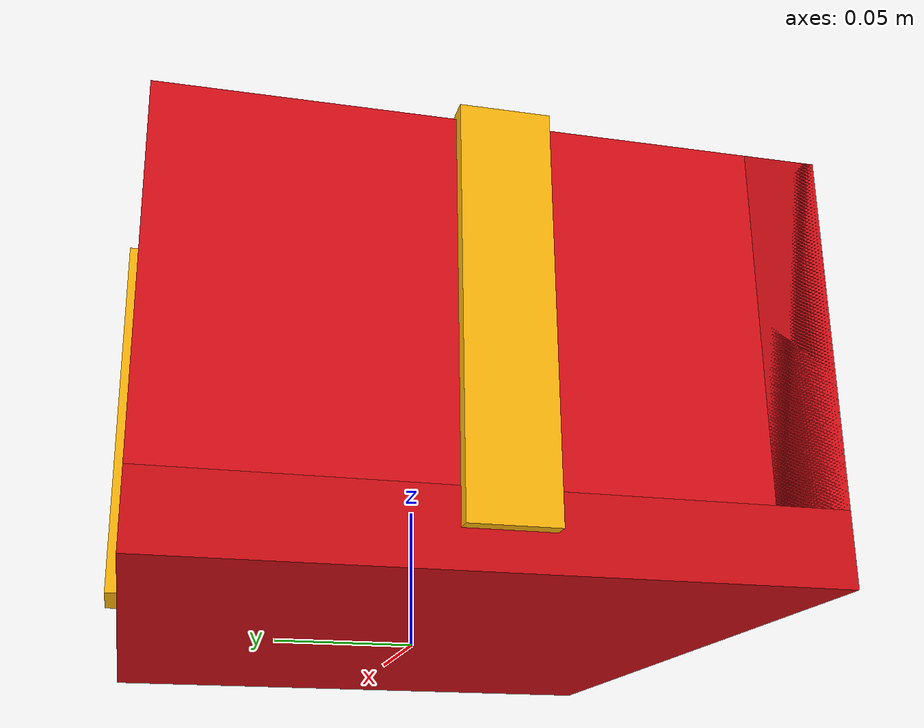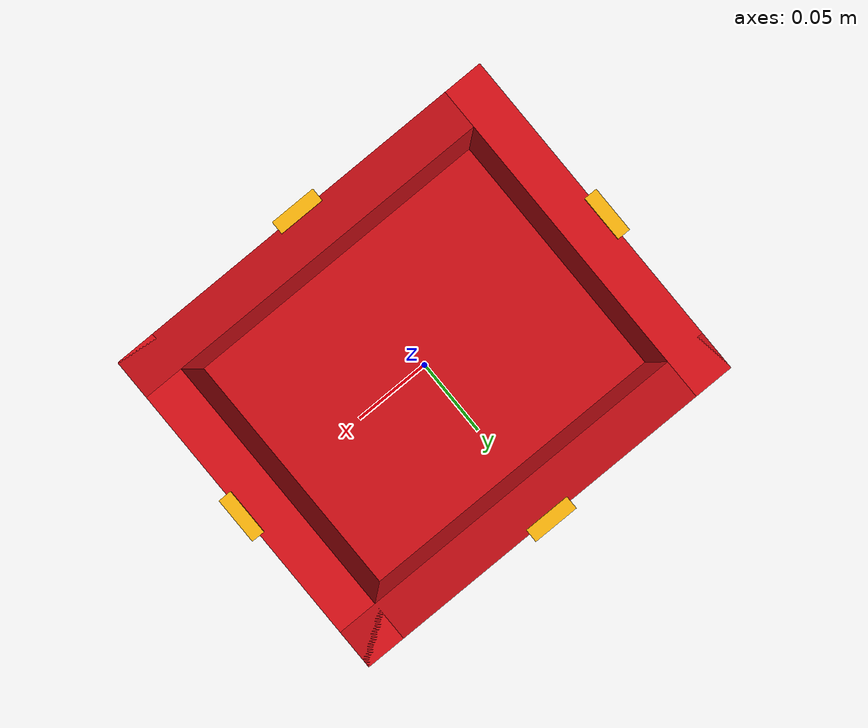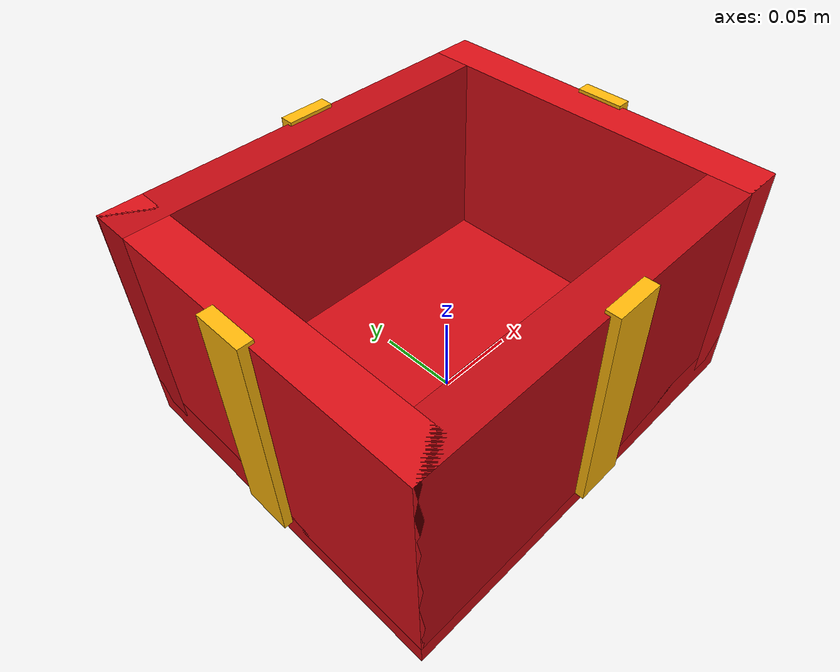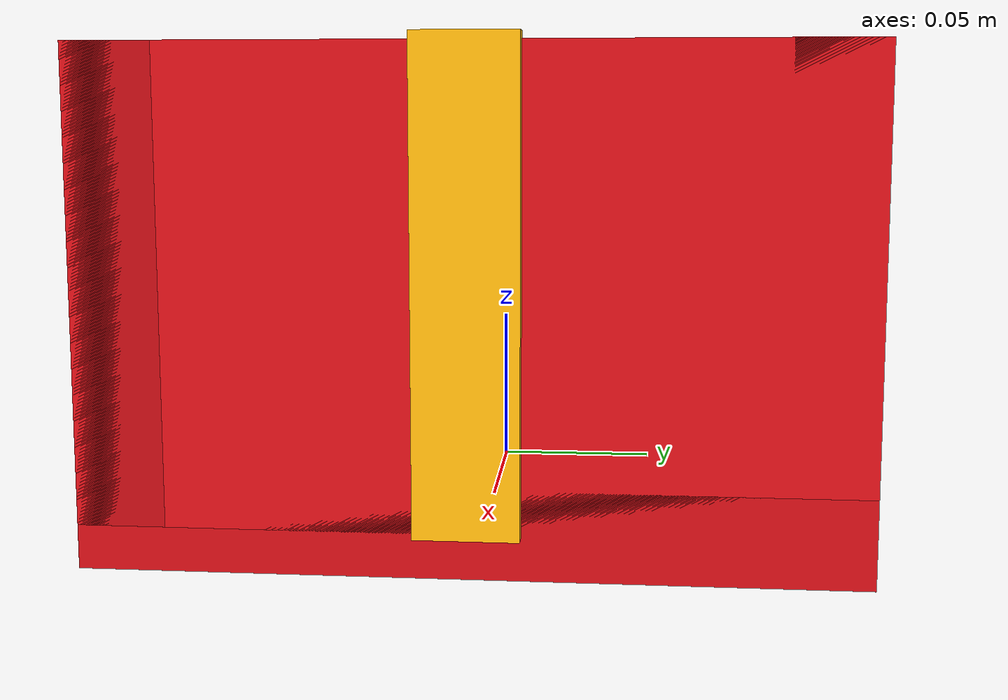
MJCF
<mujoco model="custom_gift_box">
  <worldbody>
    <body>
      <body name="object">
        <geom
          conaffinity="0"
          contype="0"
          group="1"
          pos="0 0 0.012"
          rgba="0.82 0.05 0.08 1"
          size="0.125 0.105 0.012"
          type="box"
        />
        <geom
          conaffinity="0"
          contype="0"
          group="1"
          pos="-0.113 0 0.076"
          rgba="0.86 0.06 0.09 1"
          size="0.012 0.105 0.064"
          type="box"
        />
        <geom
          conaffinity="0"
          contype="0"
          group="1"
          pos="0.113 0 0.076"
          rgba="0.86 0.06 0.09 1"
          size="0.012 0.105 0.064"
          type="box"
        />
        <geom
          conaffinity="0"
          contype="0"
          group="1"
          pos="0 -0.093 0.076"
          rgba="0.76 0.04 0.07 1"
          size="0.125 0.012 0.064"
          type="box"
        />
        <geom
          conaffinity="0"
          contype="0"
          group="1"
          pos="0 0.093 0.076"
          rgba="0.76 0.04 0.07 1"
          size="0.125 0.012 0.064"
          type="box"
        />
        <geom
          conaffinity="0"
          contype="0"
          group="1"
          pos="-0.126 0 0.077"
          rgba="1.0 0.72 0.04 1"
          size="0.004 0.014 0.065"
          type="box"
        />
        <geom
          conaffinity="0"
          contype="0"
          group="1"
          pos="0.126 0 0.077"
          rgba="1.0 0.72 0.04 1"
          size="0.004 0.014 0.065"
          type="box"
        />
        <geom
          conaffinity="0"
          contype="0"
          group="1"
          pos="0 -0.106 0.077"
          rgba="1.0 0.72 0.04 1"
          size="0.014 0.004 0.065"
          type="box"
        />
        <geom
          conaffinity="0"
          contype="0"
          group="1"
          pos="0 0.106 0.077"
          rgba="1.0 0.72 0.04 1"
          size="0.014 0.004 0.065"
          type="box"
        />
        <geom
          density="100"
          friction="0.95 0.3 0.1"
          group="0"
          pos="0 0 0.012"
          rgba="0.8 0.8 0.8 0.0"
          size="0.125 0.105 0.012"
          type="box"
        />
        <geom
          density="100"
          friction="0.95 0.3 0.1"
          group="0"
          pos="-0.113 0 0.076"
          rgba="0.8 0.8 0.8 0.0"
          size="0.012 0.105 0.064"
          type="box"
        />
        <geom
          density="100"
          friction="0.95 0.3 0.1"
          group="0"
          pos="0.113 0 0.076"
          rgba="0.8 0.8 0.8 0.0"
          size="0.012 0.105 0.064"
          type="box"
        />
        <geom
          density="100"
          friction="0.95 0.3 0.1"
          group="0"
          pos="0 -0.093 0.076"
          rgba="0.8 0.8 0.8 0.0"
          size="0.125 0.012 0.064"
          type="box"
        />
        <geom
          density="100"
          friction="0.95 0.3 0.1"
          group="0"
          pos="0 0.093 0.076"
          rgba="0.8 0.8 0.8 0.0"
          size="0.125 0.012 0.064"
          type="box"
        />
        <geom
          name="reg_bbox"
          conaffinity="0"
          contype="0"
          group="3"
          pos="0 0 0.075"
          rgba="0 0 0 0"
          size="0.135 0.115 0.075"
          type="box"
        />
      </body>
      <site rgba="0 0 0 0" size="0.005" pos="0 0 0" name="bottom_site" />
      <site rgba="0 0 0 0" size="0.005" pos="0 0 0.150" name="top_site" />
      <site rgba="0 0 0 0" size="0.005" pos="0.135 0.115 0" name="horizontal_radius_site" />
    </body>
  </worldbody>
</mujoco>
